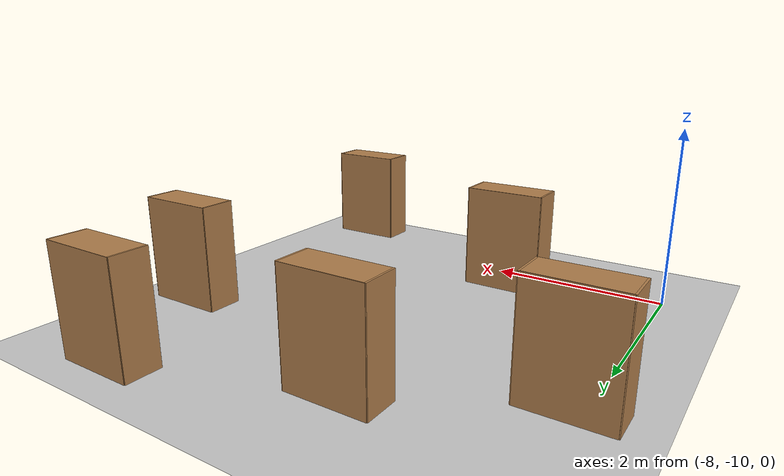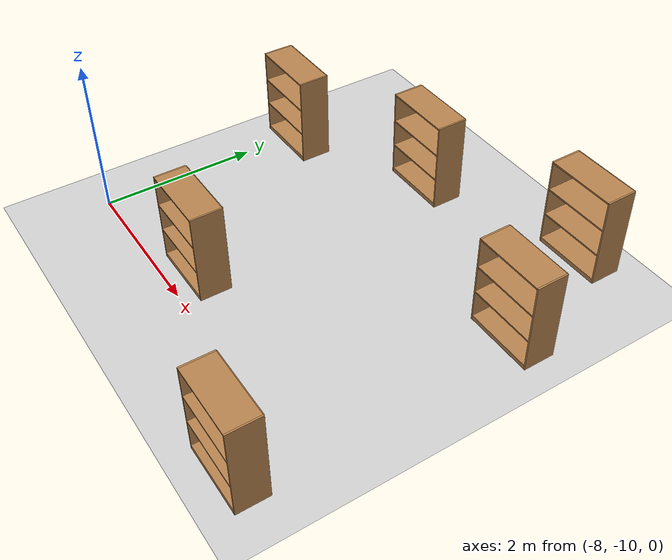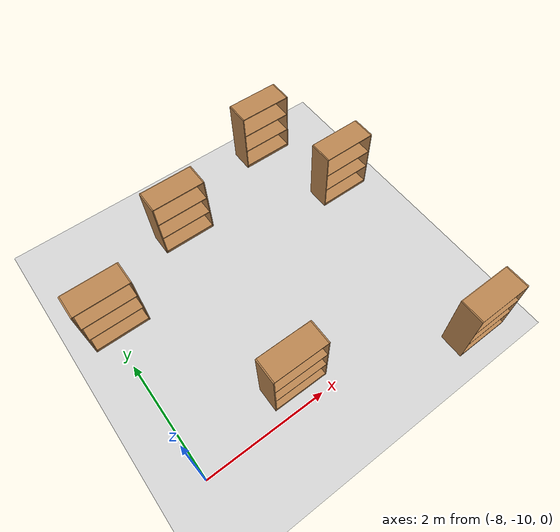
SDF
<sdf version="1.6">
 <world name="default">
  <model name="ground_plane">
   <static>1</static>
   <link name="link">
    <collision name="collision">
     <geometry><plane><normal>0 0 1</normal><size>100 100</size></plane></geometry>
     <surface><friction><ode><mu>100</mu><mu2>50</mu2></ode></friction></surface>
    </collision>
    <visual name="visual">
     <cast_shadows>0</cast_shadows>
     <geometry><plane><normal>0 0 1</normal><size>100 100</size></plane></geometry>
     <material>
      <script><uri>file://media/materials/scripts/gazebo.material</uri><name>Gazebo/Grey</name></script>
     </material>
    </visual>
    <velocity_decay><linear>0</linear><angular>0</angular></velocity_decay>
   </link>
  </model>
  <model name="bookshelf_2">
   <static>0</static>
   <link name="link">
    <inertial>
     <mass>1</mass>
     <inertia><ixx>1</ixx><ixy>0</ixy><ixz>0</ixz><iyy>1</iyy><iyz>0</iyz><izz>1</izz></inertia>
    </inertial>
    <collision name="back">
     <pose>0 0.005 0.6 0 -0 0</pose>
     <geometry><box><size>0.9 0.01 1.2</size></box></geometry>
    </collision>
    <visual name="visual1">
     <pose>0 0.005 0.6 0 -0 0</pose>
     <geometry><box><size>0.9 0.01 1.2</size></box></geometry>
     <material>
      <script><uri>file://media/materials/scripts/gazebo.material</uri><name>Gazebo/Wood</name></script>
     </material>
    </visual>
    <collision name="left_side">
     <pose>0.45 -0.195 0.6 0 -0 0</pose>
     <geometry><box><size>0.02 0.4 1.2</size></box></geometry>
    </collision>
    <visual name="visual2">
     <pose>0.45 -0.195 0.6 0 -0 0</pose>
     <geometry><box><size>0.02 0.4 1.2</size></box></geometry>
     <material>
      <script><uri>file://media/materials/scripts/gazebo.material</uri><name>Gazebo/Wood</name></script>
     </material>
    </visual>
    <collision name="right_side">
     <pose>-0.45 -0.195 0.6 0 -0 0</pose>
     <geometry><box><size>0.02 0.4 1.2</size></box></geometry>
    </collision>
    <visual name="visual3">
     <pose>-0.45 -0.195 0.6 0 -0 0</pose>
     <geometry><box><size>0.02 0.4 1.2</size></box></geometry>
     <material>
      <script><uri>file://media/materials/scripts/gazebo.material</uri><name>Gazebo/Wood</name></script>
     </material>
    </visual>
    <collision name="bottom">
     <pose>0 -0.195 0.03 0 -0 0</pose>
     <geometry><box><size>0.88 0.4 0.06</size></box></geometry>
    </collision>
    <visual name="visual4">
     <pose>0 -0.195 0.03 0 -0 0</pose>
     <geometry><box><size>0.88 0.4 0.06</size></box></geometry>
     <material>
      <script><uri>file://media/materials/scripts/gazebo.material</uri><name>Gazebo/Wood</name></script>
     </material>
    </visual>
    <collision name="top">
     <pose>0 -0.195 1.19 0 -0 0</pose>
     <geometry><box><size>0.88 0.4 0.02</size></box></geometry>
    </collision>
    <visual name="visual5">
     <pose>0 -0.195 1.19 0 -0 0</pose>
     <geometry><box><size>0.88 0.4 0.02</size></box></geometry>
     <material>
      <script><uri>file://media/materials/scripts/gazebo.material</uri><name>Gazebo/Wood</name></script>
     </material>
    </visual>
    <collision name="low_shelf">
     <pose>0 -0.195 0.43 0 -0 0</pose>
     <geometry><box><size>0.88 0.4 0.02</size></box></geometry>
    </collision>
    <visual name="visual6">
     <pose>0 -0.195 0.43 0 -0 0</pose>
     <geometry><box><size>0.88 0.4 0.02</size></box></geometry>
     <material>
      <script><uri>file://media/materials/scripts/gazebo.material</uri><name>Gazebo/Wood</name></script>
     </material>
    </visual>
    <collision name="high_shelf">
     <pose>0 -0.195 0.8 0 -0 0</pose>
     <geometry><box><size>0.88 0.4 0.02</size></box></geometry>
    </collision>
    <visual name="visual7">
     <pose>0 -0.195 0.8 0 -0 0</pose>
     <geometry><box><size>0.88 0.4 0.02</size></box></geometry>
     <material>
      <script><uri>file://media/materials/scripts/gazebo.material</uri><name>Gazebo/Wood</name></script>
     </material>
    </visual>
    <velocity_decay><linear>0</linear><angular>0</angular></velocity_decay>
   </link>
   <pose>-3.41849 -7 0 0 -0 0</pose>
  </model>
  <model name="bookshelf_5">
   <static>0</static>
   <link name="link">
    <inertial>
     <mass>1</mass>
     <inertia><ixx>1</ixx><ixy>0</ixy><ixz>0</ixz><iyy>1</iyy><iyz>0</iyz><izz>1</izz></inertia>
    </inertial>
    <collision name="back">
     <pose>0 0.005 0.6 0 -0 0</pose>
     <geometry><box><size>0.9 0.01 1.2</size></box></geometry>
    </collision>
    <visual name="visual1">
     <pose>0 0.005 0.6 0 -0 0</pose>
     <geometry><box><size>0.9 0.01 1.2</size></box></geometry>
     <material>
      <script><uri>file://media/materials/scripts/gazebo.material</uri><name>Gazebo/Wood</name></script>
     </material>
    </visual>
    <collision name="left_side">
     <pose>0.45 -0.195 0.6 0 -0 0</pose>
     <geometry><box><size>0.02 0.4 1.2</size></box></geometry>
    </collision>
    <visual name="visual2">
     <pose>0.45 -0.195 0.6 0 -0 0</pose>
     <geometry><box><size>0.02 0.4 1.2</size></box></geometry>
     <material>
      <script><uri>file://media/materials/scripts/gazebo.material</uri><name>Gazebo/Wood</name></script>
     </material>
    </visual>
    <collision name="right_side">
     <pose>-0.45 -0.195 0.6 0 -0 0</pose>
     <geometry><box><size>0.02 0.4 1.2</size></box></geometry>
    </collision>
    <visual name="visual3">
     <pose>-0.45 -0.195 0.6 0 -0 0</pose>
     <geometry><box><size>0.02 0.4 1.2</size></box></geometry>
     <material>
      <script><uri>file://media/materials/scripts/gazebo.material</uri><name>Gazebo/Wood</name></script>
     </material>
    </visual>
    <collision name="bottom">
     <pose>0 -0.195 0.03 0 -0 0</pose>
     <geometry><box><size>0.88 0.4 0.06</size></box></geometry>
    </collision>
    <visual name="visual4">
     <pose>0 -0.195 0.03 0 -0 0</pose>
     <geometry><box><size>0.88 0.4 0.06</size></box></geometry>
     <material>
      <script><uri>file://media/materials/scripts/gazebo.material</uri><name>Gazebo/Wood</name></script>
     </material>
    </visual>
    <collision name="top">
     <pose>0 -0.195 1.19 0 -0 0</pose>
     <geometry><box><size>0.88 0.4 0.02</size></box></geometry>
    </collision>
    <visual name="visual5">
     <pose>0 -0.195 1.19 0 -0 0</pose>
     <geometry><box><size>0.88 0.4 0.02</size></box></geometry>
     <material>
      <script><uri>file://media/materials/scripts/gazebo.material</uri><name>Gazebo/Wood</name></script>
     </material>
    </visual>
    <collision name="low_shelf">
     <pose>0 -0.195 0.43 0 -0 0</pose>
     <geometry><box><size>0.88 0.4 0.02</size></box></geometry>
    </collision>
    <visual name="visual6">
     <pose>0 -0.195 0.43 0 -0 0</pose>
     <geometry><box><size>0.88 0.4 0.02</size></box></geometry>
     <material>
      <script><uri>file://media/materials/scripts/gazebo.material</uri><name>Gazebo/Wood</name></script>
     </material>
    </visual>
    <collision name="high_shelf">
     <pose>0 -0.195 0.8 0 -0 0</pose>
     <geometry><box><size>0.88 0.4 0.02</size></box></geometry>
    </collision>
    <visual name="visual7">
     <pose>0 -0.195 0.8 0 -0 0</pose>
     <geometry><box><size>0.88 0.4 0.02</size></box></geometry>
     <material>
      <script><uri>file://media/materials/scripts/gazebo.material</uri><name>Gazebo/Wood</name></script>
     </material>
    </visual>
    <velocity_decay><linear>0</linear><angular>0</angular></velocity_decay>
   </link>
   <pose>-3.53929 -10.4222 0 0 -0 0</pose>
  </model>
  <model name="bookshelf_6">
   <static>0</static>
   <link name="link">
    <inertial>
     <mass>1</mass>
     <inertia><ixx>1</ixx><ixy>0</ixy><ixz>0</ixz><iyy>1</iyy><iyz>0</iyz><izz>1</izz></inertia>
    </inertial>
    <collision name="back">
     <pose>0 0.005 0.6 0 -0 0</pose>
     <geometry><box><size>0.9 0.01 1.2</size></box></geometry>
    </collision>
    <visual name="visual1">
     <pose>0 0.005 0.6 0 -0 0</pose>
     <geometry><box><size>0.9 0.01 1.2</size></box></geometry>
     <material>
      <script><uri>file://media/materials/scripts/gazebo.material</uri><name>Gazebo/Wood</name></script>
     </material>
    </visual>
    <collision name="left_side">
     <pose>0.45 -0.195 0.6 0 -0 0</pose>
     <geometry><box><size>0.02 0.4 1.2</size></box></geometry>
    </collision>
    <visual name="visual2">
     <pose>0.45 -0.195 0.6 0 -0 0</pose>
     <geometry><box><size>0.02 0.4 1.2</size></box></geometry>
     <material>
      <script><uri>file://media/materials/scripts/gazebo.material</uri><name>Gazebo/Wood</name></script>
     </material>
    </visual>
    <collision name="right_side">
     <pose>-0.45 -0.195 0.6 0 -0 0</pose>
     <geometry><box><size>0.02 0.4 1.2</size></box></geometry>
    </collision>
    <visual name="visual3">
     <pose>-0.45 -0.195 0.6 0 -0 0</pose>
     <geometry><box><size>0.02 0.4 1.2</size></box></geometry>
     <material>
      <script><uri>file://media/materials/scripts/gazebo.material</uri><name>Gazebo/Wood</name></script>
     </material>
    </visual>
    <collision name="bottom">
     <pose>0 -0.195 0.03 0 -0 0</pose>
     <geometry><box><size>0.88 0.4 0.06</size></box></geometry>
    </collision>
    <visual name="visual4">
     <pose>0 -0.195 0.03 0 -0 0</pose>
     <geometry><box><size>0.88 0.4 0.06</size></box></geometry>
     <material>
      <script><uri>file://media/materials/scripts/gazebo.material</uri><name>Gazebo/Wood</name></script>
     </material>
    </visual>
    <collision name="top">
     <pose>0 -0.195 1.19 0 -0 0</pose>
     <geometry><box><size>0.88 0.4 0.02</size></box></geometry>
    </collision>
    <visual name="visual5">
     <pose>0 -0.195 1.19 0 -0 0</pose>
     <geometry><box><size>0.88 0.4 0.02</size></box></geometry>
     <material>
      <script><uri>file://media/materials/scripts/gazebo.material</uri><name>Gazebo/Wood</name></script>
     </material>
    </visual>
    <collision name="low_shelf">
     <pose>0 -0.195 0.43 0 -0 0</pose>
     <geometry><box><size>0.88 0.4 0.02</size></box></geometry>
    </collision>
    <visual name="visual6">
     <pose>0 -0.195 0.43 0 -0 0</pose>
     <geometry><box><size>0.88 0.4 0.02</size></box></geometry>
     <material>
      <script><uri>file://media/materials/scripts/gazebo.material</uri><name>Gazebo/Wood</name></script>
     </material>
    </visual>
    <collision name="high_shelf">
     <pose>0 -0.195 0.8 0 -0 0</pose>
     <geometry><box><size>0.88 0.4 0.02</size></box></geometry>
    </collision>
    <visual name="visual7">
     <pose>0 -0.195 0.8 0 -0 0</pose>
     <geometry><box><size>0.88 0.4 0.02</size></box></geometry>
     <material>
      <script><uri>file://media/materials/scripts/gazebo.material</uri><name>Gazebo/Wood</name></script>
     </material>
    </visual>
    <velocity_decay><linear>0</linear><angular>0</angular></velocity_decay>
   </link>
   <pose>-4 -5.47465 0 0 -0 0</pose>
  </model>
  <model name="bookshelf_0_clone_1">
   <static>0</static>
   <link name="link">
    <inertial>
     <mass>1</mass>
     <inertia><ixx>1</ixx><ixy>0</ixy><ixz>0</ixz><iyy>1</iyy><iyz>0</iyz><izz>1</izz></inertia>
    </inertial>
    <collision name="back">
     <pose>0 0.005 0.6 0 -0 0</pose>
     <geometry><box><size>0.9 0.01 1.2</size></box></geometry>
    </collision>
    <visual name="visual1">
     <pose>0 0.005 0.6 0 -0 0</pose>
     <geometry><box><size>0.9 0.01 1.2</size></box></geometry>
     <material>
      <script><uri>file://media/materials/scripts/gazebo.material</uri><name>Gazebo/Wood</name></script>
     </material>
    </visual>
    <collision name="left_side">
     <pose>0.45 -0.195 0.6 0 -0 0</pose>
     <geometry><box><size>0.02 0.4 1.2</size></box></geometry>
    </collision>
    <visual name="visual2">
     <pose>0.45 -0.195 0.6 0 -0 0</pose>
     <geometry><box><size>0.02 0.4 1.2</size></box></geometry>
     <material>
      <script><uri>file://media/materials/scripts/gazebo.material</uri><name>Gazebo/Wood</name></script>
     </material>
    </visual>
    <collision name="right_side">
     <pose>-0.45 -0.195 0.6 0 -0 0</pose>
     <geometry><box><size>0.02 0.4 1.2</size></box></geometry>
    </collision>
    <visual name="visual3">
     <pose>-0.45 -0.195 0.6 0 -0 0</pose>
     <geometry><box><size>0.02 0.4 1.2</size></box></geometry>
     <material>
      <script><uri>file://media/materials/scripts/gazebo.material</uri><name>Gazebo/Wood</name></script>
     </material>
    </visual>
    <collision name="bottom">
     <pose>0 -0.195 0.03 0 -0 0</pose>
     <geometry><box><size>0.88 0.4 0.06</size></box></geometry>
    </collision>
    <visual name="visual4">
     <pose>0 -0.195 0.03 0 -0 0</pose>
     <geometry><box><size>0.88 0.4 0.06</size></box></geometry>
     <material>
      <script><uri>file://media/materials/scripts/gazebo.material</uri><name>Gazebo/Wood</name></script>
     </material>
    </visual>
    <collision name="top">
     <pose>0 -0.195 1.19 0 -0 0</pose>
     <geometry><box><size>0.88 0.4 0.02</size></box></geometry>
    </collision>
    <visual name="visual5">
     <pose>0 -0.195 1.19 0 -0 0</pose>
     <geometry><box><size>0.88 0.4 0.02</size></box></geometry>
     <material>
      <script><uri>file://media/materials/scripts/gazebo.material</uri><name>Gazebo/Wood</name></script>
     </material>
    </visual>
    <collision name="low_shelf">
     <pose>0 -0.195 0.43 0 -0 0</pose>
     <geometry><box><size>0.88 0.4 0.02</size></box></geometry>
    </collision>
    <visual name="visual6">
     <pose>0 -0.195 0.43 0 -0 0</pose>
     <geometry><box><size>0.88 0.4 0.02</size></box></geometry>
     <material>
      <script><uri>file://media/materials/scripts/gazebo.material</uri><name>Gazebo/Wood</name></script>
     </material>
    </visual>
    <collision name="high_shelf">
     <pose>0 -0.195 0.8 0 -0 0</pose>
     <geometry><box><size>0.88 0.4 0.02</size></box></geometry>
    </collision>
    <visual name="visual7">
     <pose>0 -0.195 0.8 0 -0 0</pose>
     <geometry><box><size>0.88 0.4 0.02</size></box></geometry>
     <material>
      <script><uri>file://media/materials/scripts/gazebo.material</uri><name>Gazebo/Wood</name></script>
     </material>
    </visual>
    <velocity_decay><linear>0</linear><angular>0</angular></velocity_decay>
   </link>
   <pose>-7.86995 -7.06577 1e-06 -6.3e-05 -0 0</pose>
  </model>
  <model name="bookshelf_0_clone_2">
   <static>0</static>
   <link name="link">
    <inertial>
     <mass>1</mass>
     <inertia><ixx>1</ixx><ixy>0</ixy><ixz>0</ixz><iyy>1</iyy><iyz>0</iyz><izz>1</izz></inertia>
    </inertial>
    <collision name="back">
     <pose>0 0.005 0.6 0 -0 0</pose>
     <geometry><box><size>0.9 0.01 1.2</size></box></geometry>
    </collision>
    <visual name="visual1">
     <pose>0 0.005 0.6 0 -0 0</pose>
     <geometry><box><size>0.9 0.01 1.2</size></box></geometry>
     <material>
      <script><uri>file://media/materials/scripts/gazebo.material</uri><name>Gazebo/Wood</name></script>
     </material>
    </visual>
    <collision name="left_side">
     <pose>0.45 -0.195 0.6 0 -0 0</pose>
     <geometry><box><size>0.02 0.4 1.2</size></box></geometry>
    </collision>
    <visual name="visual2">
     <pose>0.45 -0.195 0.6 0 -0 0</pose>
     <geometry><box><size>0.02 0.4 1.2</size></box></geometry>
     <material>
      <script><uri>file://media/materials/scripts/gazebo.material</uri><name>Gazebo/Wood</name></script>
     </material>
    </visual>
    <collision name="right_side">
     <pose>-0.45 -0.195 0.6 0 -0 0</pose>
     <geometry><box><size>0.02 0.4 1.2</size></box></geometry>
    </collision>
    <visual name="visual3">
     <pose>-0.45 -0.195 0.6 0 -0 0</pose>
     <geometry><box><size>0.02 0.4 1.2</size></box></geometry>
     <material>
      <script><uri>file://media/materials/scripts/gazebo.material</uri><name>Gazebo/Wood</name></script>
     </material>
    </visual>
    <collision name="bottom">
     <pose>0 -0.195 0.03 0 -0 0</pose>
     <geometry><box><size>0.88 0.4 0.06</size></box></geometry>
    </collision>
    <visual name="visual4">
     <pose>0 -0.195 0.03 0 -0 0</pose>
     <geometry><box><size>0.88 0.4 0.06</size></box></geometry>
     <material>
      <script><uri>file://media/materials/scripts/gazebo.material</uri><name>Gazebo/Wood</name></script>
     </material>
    </visual>
    <collision name="top">
     <pose>0 -0.195 1.19 0 -0 0</pose>
     <geometry><box><size>0.88 0.4 0.02</size></box></geometry>
    </collision>
    <visual name="visual5">
     <pose>0 -0.195 1.19 0 -0 0</pose>
     <geometry><box><size>0.88 0.4 0.02</size></box></geometry>
     <material>
      <script><uri>file://media/materials/scripts/gazebo.material</uri><name>Gazebo/Wood</name></script>
     </material>
    </visual>
    <collision name="low_shelf">
     <pose>0 -0.195 0.43 0 -0 0</pose>
     <geometry><box><size>0.88 0.4 0.02</size></box></geometry>
    </collision>
    <visual name="visual6">
     <pose>0 -0.195 0.43 0 -0 0</pose>
     <geometry><box><size>0.88 0.4 0.02</size></box></geometry>
     <material>
      <script><uri>file://media/materials/scripts/gazebo.material</uri><name>Gazebo/Wood</name></script>
     </material>
    </visual>
    <collision name="high_shelf">
     <pose>0 -0.195 0.8 0 -0 0</pose>
     <geometry><box><size>0.88 0.4 0.02</size></box></geometry>
    </collision>
    <visual name="visual7">
     <pose>0 -0.195 0.8 0 -0 0</pose>
     <geometry><box><size>0.88 0.4 0.02</size></box></geometry>
     <material>
      <script><uri>file://media/materials/scripts/gazebo.material</uri><name>Gazebo/Wood</name></script>
     </material>
    </visual>
    <velocity_decay><linear>0</linear><angular>0</angular></velocity_decay>
   </link>
   <pose>-6.24179 -9.41728 1e-06 -6.3e-05 -0 0</pose>
  </model>
  <model name="bookshelf_0_clone_5">
   <static>0</static>
   <link name="link">
    <inertial>
     <mass>1</mass>
     <inertia><ixx>1</ixx><ixy>0</ixy><ixz>0</ixz><iyy>1</iyy><iyz>0</iyz><izz>1</izz></inertia>
    </inertial>
    <collision name="back">
     <pose>0 0.005 0.6 0 -0 0</pose>
     <geometry><box><size>0.9 0.01 1.2</size></box></geometry>
    </collision>
    <visual name="visual1">
     <pose>0 0.005 0.6 0 -0 0</pose>
     <geometry><box><size>0.9 0.01 1.2</size></box></geometry>
     <material>
      <script><uri>file://media/materials/scripts/gazebo.material</uri><name>Gazebo/Wood</name></script>
     </material>
    </visual>
    <collision name="left_side">
     <pose>0.45 -0.195 0.6 0 -0 0</pose>
     <geometry><box><size>0.02 0.4 1.2</size></box></geometry>
    </collision>
    <visual name="visual2">
     <pose>0.45 -0.195 0.6 0 -0 0</pose>
     <geometry><box><size>0.02 0.4 1.2</size></box></geometry>
     <material>
      <script><uri>file://media/materials/scripts/gazebo.material</uri><name>Gazebo/Wood</name></script>
     </material>
    </visual>
    <collision name="right_side">
     <pose>-0.45 -0.195 0.6 0 -0 0</pose>
     <geometry><box><size>0.02 0.4 1.2</size></box></geometry>
    </collision>
    <visual name="visual3">
     <pose>-0.45 -0.195 0.6 0 -0 0</pose>
     <geometry><box><size>0.02 0.4 1.2</size></box></geometry>
     <material>
      <script><uri>file://media/materials/scripts/gazebo.material</uri><name>Gazebo/Wood</name></script>
     </material>
    </visual>
    <collision name="bottom">
     <pose>0 -0.195 0.03 0 -0 0</pose>
     <geometry><box><size>0.88 0.4 0.06</size></box></geometry>
    </collision>
    <visual name="visual4">
     <pose>0 -0.195 0.03 0 -0 0</pose>
     <geometry><box><size>0.88 0.4 0.06</size></box></geometry>
     <material>
      <script><uri>file://media/materials/scripts/gazebo.material</uri><name>Gazebo/Wood</name></script>
     </material>
    </visual>
    <collision name="top">
     <pose>0 -0.195 1.19 0 -0 0</pose>
     <geometry><box><size>0.88 0.4 0.02</size></box></geometry>
    </collision>
    <visual name="visual5">
     <pose>0 -0.195 1.19 0 -0 0</pose>
     <geometry><box><size>0.88 0.4 0.02</size></box></geometry>
     <material>
      <script><uri>file://media/materials/scripts/gazebo.material</uri><name>Gazebo/Wood</name></script>
     </material>
    </visual>
    <collision name="low_shelf">
     <pose>0 -0.195 0.43 0 -0 0</pose>
     <geometry><box><size>0.88 0.4 0.02</size></box></geometry>
    </collision>
    <visual name="visual6">
     <pose>0 -0.195 0.43 0 -0 0</pose>
     <geometry><box><size>0.88 0.4 0.02</size></box></geometry>
     <material>
      <script><uri>file://media/materials/scripts/gazebo.material</uri><name>Gazebo/Wood</name></script>
     </material>
    </visual>
    <collision name="high_shelf">
     <pose>0 -0.195 0.8 0 -0 0</pose>
     <geometry><box><size>0.88 0.4 0.02</size></box></geometry>
    </collision>
    <visual name="visual7">
     <pose>0 -0.195 0.8 0 -0 0</pose>
     <geometry><box><size>0.88 0.4 0.02</size></box></geometry>
     <material>
      <script><uri>file://media/materials/scripts/gazebo.material</uri><name>Gazebo/Wood</name></script>
     </material>
    </visual>
    <velocity_decay><linear>0</linear><angular>0</angular></velocity_decay>
   </link>
   <pose>-6.12679 -6.18232 1e-06 -6.3e-05 -0 0</pose>
  </model>
 </world>
</sdf>
